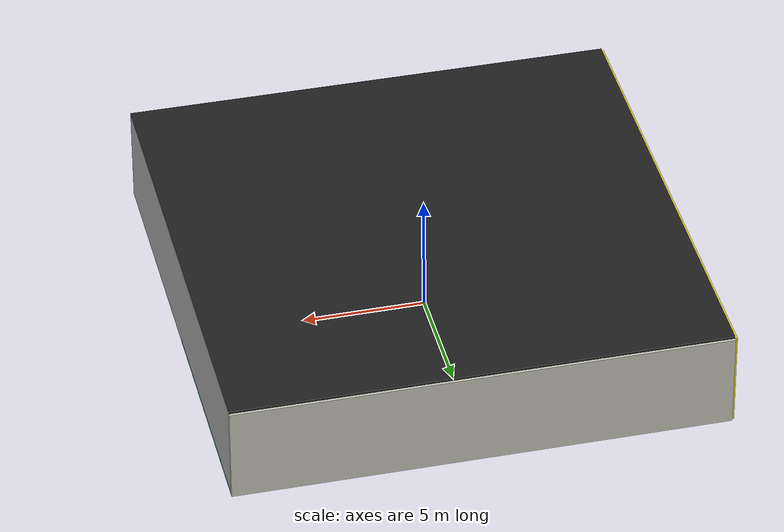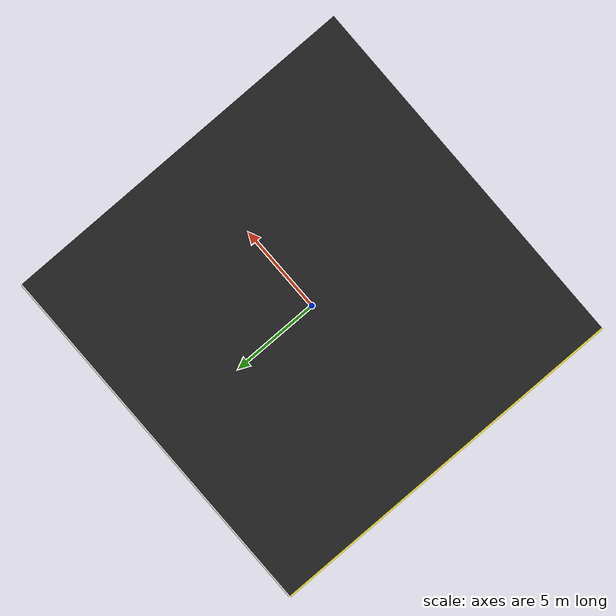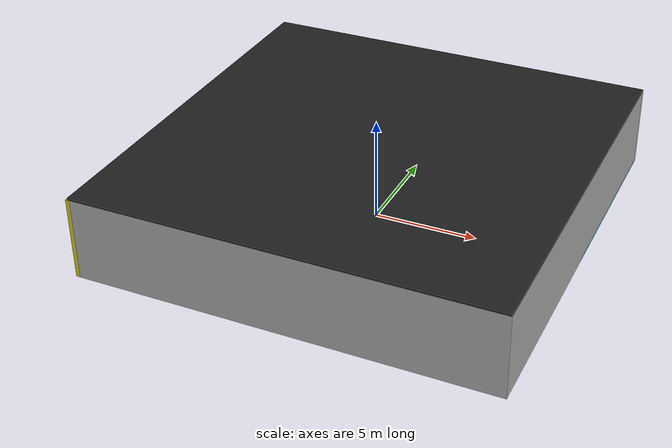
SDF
<sdf version="1.4">
 <world name="default">
  <physics type="ode">
   <max_step_size>0.001</max_step_size>
   <real_time_factor>1</real_time_factor>
   <real_time_update_rate>1000</real_time_update_rate>
   <gravity>0 0 -9.8</gravity>
  </physics>
  <scene><ambient>0.4 0.4 0.4 1</ambient><background>0.7 0.7 0.7 1</background><shadows>1</shadows></scene>
  <model name="Surrounding">
   <static>1</static>
   <link name="Ceiling">
    <collision name="Ceiling_Collision"><geometry><box><size>20 20 0.1</size></box></geometry></collision>
    <visual name="Ceiling_Visual">
     <geometry><box><size>20 20 0.1</size></box></geometry>
     <material>
      <script><uri>file://media/materials/scripts/gazebo.material</uri><name>Gazebo/FlatBlack</name></script>
     </material>
    </visual>
    <pose>0 0 4.05 0 0 0</pose>
   </link>
   <link name="Wall_South">
    <collision name="Wall_South_Collision">
     <geometry><box><size>20 0 4</size></box></geometry>
     <pose>0 0 2 0 -0 0</pose>
    </collision>
    <visual name="Wall_South_Visual">
     <pose>0 0 2 0 -0 0</pose>
     <geometry><box><size>20 0 4</size></box></geometry>
     <material>
      <script><uri>file://media/materials/scripts/gazebo.material</uri><name>Gazebo/LightOn</name></script>
     </material>
    </visual>
    <velocity_decay><linear>0</linear><angular>0</angular></velocity_decay>
    <pose>0 -10 0 0 -0 0</pose>
   </link>
   <link name="Wall_East">
    <collision name="Wall_21_Collision">
     <geometry><box><size>20 0 4</size></box></geometry>
     <pose>0 0 2 0 -0 0</pose>
    </collision>
    <visual name="Wall_21_Visual">
     <pose>0 0 2 0 -0 0</pose>
     <geometry><box><size>20 0 4</size></box></geometry>
     <material>
      <script><uri>file://media/materials/scripts/gazebo.material</uri><name>Gazebo/JointAnchor</name></script>
     </material>
    </visual>
    <velocity_decay><linear>0</linear><angular>0</angular></velocity_decay>
    <pose>10 0 0 0 -0 1.5708</pose>
   </link>
   <link name="Wall_North">
    <collision name="Wall_22_Collision">
     <geometry><box><size>20 0.2 4</size></box></geometry>
     <pose>0 0 2 0 -0 0</pose>
    </collision>
    <visual name="Wall_22_Visual">
     <pose>0 0 2 0 -0 0</pose>
     <geometry><box><size>20 0.2 4</size></box></geometry>
     <material>
      <script><uri>file://media/materials/scripts/gazebo.material</uri><name>Gazebo/PaintedWall</name></script>
     </material>
    </visual>
    <velocity_decay><linear>0</linear><angular>0</angular></velocity_decay>
    <pose>0 10 0 0 -0 0</pose>
   </link>
   <link name="Wall_West">
    <collision name="Wall_23_Collision">
     <geometry><box><size>20 0.2 4</size></box></geometry>
     <pose>0 0 2 0 -0 0</pose>
    </collision>
    <visual name="Wall_23_Visual">
     <pose>0 0 2 0 -0 0</pose>
     <geometry><box><size>20 0.2 4</size></box></geometry>
     <material>
      <script><uri>file://media/materials/scripts/gazebo.material</uri><name>Gazebo/YellowGlow</name></script>
     </material>
    </visual>
    <velocity_decay><linear>0</linear><angular>0</angular></velocity_decay>
    <pose>-10 0 0 0 0 -1.5708</pose>
   </link>
   <link name="Ground_link">
    <collision name="collision">
     <pose>0 0 .05 0 -0 0</pose>
     <geometry><box><size>20 20 0.1</size></box></geometry>
    </collision>
    <visual name="visual">
     <pose>0 0 .05 0 -0 0</pose>
     <geometry><box><size>20 20 0.1</size></box></geometry>
     <material>
      <script><uri>file://media/materials/scripts/gazebo.material</uri><name>Gazebo/Turquoise</name></script>
     </material>
    </visual>
   </link>
   <static>1</static>
  </model>
  <spherical_coordinates>
   <surface_model>EARTH_WGS84</surface_model>
   <latitude_deg>0</latitude_deg>
   <longitude_deg>0</longitude_deg>
   <elevation>0</elevation>
   <heading_deg>0</heading_deg>
  </spherical_coordinates>
  <light name="lightball_0" type="diffuse">
   <diffuse>0.8 0.8 0.8 1</diffuse>
   <specular>0.2 0.2 0.2 1</specular>
   <attenuation>
    <range>100</range>
    <constant>0.7</constant>
    <linear>0.01</linear>
    <quadratic>0.001</quadratic>
   </attenuation>
   <direction>-0.5 0.1 -0.9</direction>
   <pose>-6.4165464628 -4.34775998935 1.36892618763 0 0 0</pose>
  </light>
  <light name="lightball_1" type="diffuse">
   <diffuse>0.8 0.8 0.8 1</diffuse>
   <specular>0.2 0.2 0.2 1</specular>
   <attenuation>
    <range>100</range>
    <constant>0.7</constant>
    <linear>0.01</linear>
    <quadratic>0.001</quadratic>
   </attenuation>
   <direction>-0.5 0.1 -0.9</direction>
   <pose>0.53078749435 -1.24894467739 2.75064687748 0 0 0</pose>
  </light>
  <light name="lightball_2" type="diffuse">
   <diffuse>0.8 0.8 0.8 1</diffuse>
   <specular>0.2 0.2 0.2 1</specular>
   <attenuation>
    <range>100</range>
    <constant>0.7</constant>
    <linear>0.01</linear>
    <quadratic>0.001</quadratic>
   </attenuation>
   <direction>-0.5 0.1 -0.9</direction>
   <pose>-1.10352940046 -2.78402354625 1.55744276605 0 0 0</pose>
  </light>
  <include><uri>model://table</uri><pose>-7.30676056491 -7.63727468258 0 0 0 2.02678540961</pose></include>
  <include>
   <uri>model://robocup_3Dsim_goal</uri>
   <pose>-1.20216990768 -7.52298421633 0 0 0 1.7872441891</pose>
  </include>
  <include>
   <uri>model://construction_cone</uri>
   <pose>-2.0783278731 7.73165831457 0 0 0 1.77737757472</pose>
  </include>
  <include><uri>model://table</uri><pose>5.1457859239 -4.35275698473 0 0 0 0.774647008964</pose></include>
  <include>
   <uri>model://textured_shapes</uri>
   <pose>7.96751515119 -5.28203042274 0 0 0 0.168333240406</pose>
  </include>
 </world>
</sdf>

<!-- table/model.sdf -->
<sdf version="1.5">
  <model name="table">
    <static>true</static>
    <link name="link">
      <collision name="surface">
        <pose>0 0 1.0 0 0 0</pose>
        <geometry>
          <box>
            <size>1.5 0.8 0.03</size>
          </box>
        </geometry>
        <surface>
          <friction>
            <ode>
              <mu>0.6</mu>
              <mu2>0.6</mu2>
            </ode>
          </friction>
        </surface>
      </collision>
      <visual name="visual1">
        <pose>0 0 1.0 0 0 0</pose>
        <geometry>
          <box>
            <size>1.5 0.8 0.03</size>
          </box>
        </geometry>
        <material>
          <script>
            <uri>model://media/materials/scripts/gazebo.material</uri>
            <name>Gazebo/Wood</name>
          </script>
        </material>
      </visual>
      <collision name="front_left_leg">
        <pose>0.68 0.38 0.5 0 0 0</pose>
        <geometry>
          <cylinder>
            <radius>0.02</radius>
            <length>1.0</length>
          </cylinder>
        </geometry>
      </collision>
      <visual name="front_left_leg">
        <pose>0.68 0.38 0.5 0 0 0</pose>
        <geometry>
          <cylinder>
            <radius>0.02</radius>
            <length>1.0</length>
          </cylinder>
        </geometry>
        <material>
          <script>
            <uri>model://media/materials/scripts/gazebo.material</uri>
            <name>Gazebo/Grey</name>
          </script>
        </material>
      </visual>
      <collision name="front_right_leg">
        <pose>0.68 -0.38 0.5 0 0 0</pose>
        <geometry>
          <cylinder>
            <radius>0.02</radius>
            <length>1.0</length>
          </cylinder>
        </geometry>
      </collision>
      <visual name="front_right_leg">
        <pose>0.68 -0.38 0.5 0 0 0</pose>
        <geometry>
          <cylinder>
            <radius>0.02</radius>
            <length>1.0</length>
          </cylinder>
        </geometry>
        <material>
          <script>
            <uri>model://media/materials/scripts/gazebo.material</uri>
            <name>Gazebo/Grey</name>
          </script>
        </material>
      </visual>
      <collision name="back_right_leg">
        <pose>-0.68 -0.38 0.5 0 0 0</pose>
        <geometry>
          <cylinder>
            <radius>0.02</radius>
            <length>1.0</length>
          </cylinder>
        </geometry>
      </collision>
      <visual name="back_right_leg">
        <pose>-0.68 -0.38 0.5 0 0 0</pose>
        <geometry>
          <cylinder>
            <radius>0.02</radius>
            <length>1.0</length>
          </cylinder>
        </geometry>
        <material>
          <script>
            <uri>model://media/materials/scripts/gazebo.material</uri>
            <name>Gazebo/Grey</name>
          </script>
        </material>
      </visual>
      <collision name="back_left_leg">
        <pose>-0.68 0.38 0.5 0 0 0</pose>
        <geometry>
          <cylinder>
            <radius>0.02</radius>
            <length>1.0</length>
          </cylinder>
        </geometry>
      </collision>
      <visual name="back_left_leg">
        <pose>-0.68 0.38 0.5 0 0 0</pose>
        <geometry>
          <cylinder>
            <radius>0.02</radius>
            <length>1.0</length>
          </cylinder>
        </geometry>
        <material>
          <script>
            <uri>model://media/materials/scripts/gazebo.material</uri>
            <name>Gazebo/Grey</name>
          </script>
        </material>
      </visual>
    </link>
  </model>
</sdf>

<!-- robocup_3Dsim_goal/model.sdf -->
<sdf version="1.5">
  <model name="robocup_3d_goal">
    <static>true</static>
    <link name="left_post">
      <pose>0 1.05 0.45 0 0 0</pose>
      <collision name="collision">
        <geometry>
          <cylinder>
            <radius>0.05</radius>
            <length>0.9</length>
          </cylinder>
        </geometry>
      </collision>
      <visual name="visual">
        <geometry>
          <cylinder>
            <radius>0.05</radius>
            <length>0.9</length>
          </cylinder>
        </geometry>
        <material>
          <script>
            <uri>file://media/materials/scripts/gazebo.material</uri>
            <name>Gazebo/ZincYellow</name>
          </script>
        </material>
      </visual>
    </link>
    <link name="left_support_horiz_lower">
      <pose>0.30 1.05 0.01 0 0 0</pose>
      <collision name="collision">
        <geometry>
          <box>
            <size>0.50 0.02 0.02</size>
          </box>
        </geometry>
      </collision>
      <visual name="visual">
        <geometry>
          <box>
            <size>0.50 0.02 0.02</size>
          </box>
        </geometry>
        <material>
          <script>
            <uri>file://media/materials/scripts/gazebo.material</uri>
            <name>Gazebo/White</name>
          </script>
        </material>
      </visual>
    </link>
    <link name="left_support_horiz_upper">
      <pose>0.30 1.05 0.79 0 0 0</pose>
      <collision name="collision">
        <geometry>
          <box>
            <size>0.50 0.02 0.02</size>
          </box>
        </geometry>
      </collision>
      <visual name="visual">
        <geometry>
          <box>
            <size>0.50 0.02 0.02</size>
          </box>
        </geometry>
        <material>
          <script>
            <uri>file://media/materials/scripts/gazebo.material</uri>
            <name>Gazebo/White</name>
          </script>
        </material>
      </visual>
    </link>
    <link name="left_support_vertical">
      <pose>0.56 1.05 0.4 0 1.5708 0</pose>
      <collision name="collision">
        <geometry>
          <box>
            <size>0.80 0.02 0.02</size>
          </box>
        </geometry>
      </collision>
      <visual name="visual">
        <geometry>
          <box>
            <size>0.80 0.02 0.02</size>
          </box>
        </geometry>
        <material>
          <script>
            <uri>file://media/materials/scripts/gazebo.material</uri>
            <name>Gazebo/White</name>
          </script>
        </material>
      </visual>
    </link>
    <link name="right_support_horiz_lower">
      <pose>0.30 -1.05 0.01 0 0 0</pose>
      <collision name="collision">
        <geometry>
          <box>
            <size>0.50 0.02 0.02</size>
          </box>
        </geometry>
      </collision>
      <visual name="visual">
        <geometry>
          <box>
            <size>0.50 0.02 0.02</size>
          </box>
        </geometry>
        <material>
          <script>
            <uri>file://media/materials/scripts/gazebo.material</uri>
            <name>Gazebo/White</name>
          </script>
        </material>
      </visual>
    </link>
    <link name="right_support_horiz_upper">
      <pose>0.30 -1.05 0.79 0 0 0</pose>
      <collision name="collision">
        <geometry>
          <box>
            <size>0.50 0.02 0.02</size>
          </box>
        </geometry>
      </collision>
      <visual name="visual">
        <geometry>
          <box>
            <size>0.50 0.02 0.02</size>
          </box>
        </geometry>
        <material>
          <script>
            <uri>file://media/materials/scripts/gazebo.material</uri>
            <name>Gazebo/White</name>
          </script>
        </material>
      </visual>
    </link>
    <link name="right_support_vertical">
      <pose>0.56 -1.05 0.4 0 1.5708 0</pose>
      <collision name="collision">
        <geometry>
          <box>
            <size>0.80 0.02 0.02</size>
          </box>
        </geometry>
      </collision>
      <visual name="visual">
        <geometry>
          <box>
            <size>0.80 0.02 0.02</size>
          </box>
        </geometry>
        <material>
          <script>
            <uri>file://media/materials/scripts/gazebo.material</uri>
            <name>Gazebo/White</name>
          </script>
        </material>
      </visual>
    </link>
    <link name="center_support_horiz_lower">
      <pose>0.56 0 0.01 0 1.5708 0</pose>
      <collision name="collision">
        <geometry>
          <box>
            <size>0.02 2.08 0.02</size>
          </box>
        </geometry>
      </collision>
      <visual name="visual">
        <geometry>
          <box>
            <size>0.02 2.08 0.02</size>
          </box>
        </geometry>
        <material>
          <script>
            <uri>file://media/materials/scripts/gazebo.material</uri>
            <name>Gazebo/White</name>
          </script>
        </material>
      </visual>
    </link>
    <link name="center_support_horiz_upper">
      <pose>0.56 0 0.79 0 1.5708 0</pose>
      <collision name="collision">
        <geometry>
          <box>
            <size>0.02 2.08 0.02</size>
          </box>
        </geometry>
      </collision>
      <visual name="visual">
        <geometry>
          <box>
            <size>0.02 2.08 0.02</size>
          </box>
        </geometry>
        <material>
          <script>
            <uri>file://media/materials/scripts/gazebo.material</uri>
            <name>Gazebo/White</name>
          </script>
        </material>
      </visual>
    </link>
    <link name="right_post">
      <pose>0 -1.05 0.45 0 0 0</pose>
      <collision name="collision">
        <geometry>
          <cylinder>
            <radius>0.05</radius>
            <length>0.9</length>
          </cylinder>
        </geometry>
      </collision>
      <visual name="visual">
        <geometry>
          <cylinder>
            <radius>0.05</radius>
            <length>0.9</length>
          </cylinder>
        </geometry>
        <material>
          <script>
            <uri>file://media/materials/scripts/gazebo.material</uri>
            <name>Gazebo/ZincYellow</name>
          </script>
        </material>
      </visual>
    </link>
    <link name="crossbar">
      <pose>0 0 0.85 1.57 1.57 0</pose>
      <collision name="collision">
        <geometry>
          <cylinder>
            <radius>0.05</radius>
            <length>2.0</length>
          </cylinder>
        </geometry>
      </collision>
      <visual name="visual">
        <geometry>
          <cylinder>
            <radius>0.05</radius>
            <length>2.0</length>
          </cylinder>
        </geometry>
        <material>
          <script>
            <uri>file://media/materials/scripts/gazebo.material</uri>
            <name>Gazebo/ZincYellow</name>
          </script>
        </material>
      </visual>
    </link>
    <link name="center_net">
      <pose>0.56 0 0.40 0 0 0</pose>
      <collision name="collision">
        <geometry>
          <box>
            <size>0.01 2.1 0.80</size>
          </box>
        </geometry>
      </collision>
      <visual name="visual">
        <geometry>
          <box>
            <size>0.01 2.1 0.80</size>
          </box>
        </geometry>
        <material>
          <script>
            <uri>model://../model_source/models/robocup09_spl_field/materials/scripts/</uri>
            <uri>model://../model_source/models/robocup09_spl_field/materials/textures/</uri>
            <name>RoboCup/Net</name>
          </script>
        </material>
      </visual>
    </link>
    <link name="left_net">
      <pose>0.30 1.05 0.40 0 0 0</pose>
      <collision name="collision">
        <geometry>
          <box>
            <size>0.50 0.01 0.76</size>
          </box>
        </geometry>
      </collision>
      <visual name="visual">
        <geometry>
          <box>
            <size>0.50 0.01 0.76</size>
          </box>
        </geometry>
        <material>
          <script>
            <uri>model://../model_source/models/robocup09_spl_field/materials/scripts/</uri>
            <uri>model://../model_source/models/robocup09_spl_field/materials/textures/</uri>
            <name>RoboCup/Net</name>
          </script>
        </material>
      </visual>
    </link>
    <link name="right_net">
      <pose>0.30 -1.05 0.40 0 0 0</pose>
      <collision name="collision">
        <geometry>
          <box>
            <size>0.50 0.01 0.76</size>
          </box>
        </geometry>
      </collision>
      <visual name="visual">
        <geometry>
          <box>
            <size>0.50 0.01 0.76</size>
          </box>
        </geometry>
        <material>
          <script>
            <uri>model://../model_source/models/robocup09_spl_field/materials/scripts/</uri>
            <uri>model://../model_source/models/robocup09_spl_field/materials/textures/</uri>
            <name>RoboCup/Net</name>
          </script>
        </material>
      </visual>
    </link>
  </model>
</sdf>

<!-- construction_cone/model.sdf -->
<sdf version="1.5">
  <model name="Construction Cone">
    <link name="link">
      <collision name="collision">
        <geometry>
          <mesh>
            <scale>10 10 10</scale>
            <uri>file://isr-testbed/construction_cone/meshes/construction_cone.dae</uri>
          </mesh>
        </geometry>
      </collision>
      <visual name="visual">
        <geometry>
          <mesh>
            <scale>10 10 10</scale>
            <uri>file://isr-testbed/construction_cone/meshes/construction_cone.dae</uri>
          </mesh>
        </geometry>
      </visual>
    </link>
  </model>
</sdf>

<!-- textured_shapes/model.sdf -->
<sdf version="1.6">
  <model name="textured_shapes">
    <pose>0 0 0.5 0 0 0</pose>
    <link name="box">
      <pose>0 -1.5 0 0 0 0</pose>
      <collision name="collision">
        <geometry>
          <box>
            <size>1 1 1</size>
          </box>
        </geometry>
      </collision>
      <visual name="visual">
        <geometry>
          <box>
            <size>1 1 1</size>
          </box>
        </geometry>
        <material>
          <script>
            <uri>model://../model_source/models/textured_shapes/materials/scripts</uri>
            <uri>model://../model_source/models/textured_shapes/materials/textures</uri>
            <name>TexturedShape/Squares</name>
          </script>
        </material>
      </visual>
    </link>
    <link name="sphere">
      <collision name="collision">
        <geometry>
          <sphere>
            <radius>0.5</radius>
          </sphere>
        </geometry>
      </collision>
      <visual name="visual">
        <geometry>
          <sphere>
            <radius>0.5</radius>
          </sphere>
        </geometry>
        <material>
          <script>
            <uri>model://../model_source/models/textured_shapes/materials/scripts</uri>
            <uri>model://../model_source/models/textured_shapes/materials/textures</uri>
            <name>TexturedShape/Squares</name>
          </script>
        </material>
      </visual>
    </link>
    <link name="cylinder">
      <pose>0 1.5 0 0 0 0</pose>
      <collision name="collision">
        <geometry>
          <cylinder>
            <radius>0.5</radius>
            <length>1</length>
          </cylinder>
        </geometry>
      </collision>
      <visual name="visual">
        <geometry>
          <cylinder>
            <radius>0.5</radius>
            <length>1</length>
          </cylinder>
        </geometry>
        <material>
          <script>
            <uri>model://../model_source/models/textured_shapes/materials/scripts</uri>
            <uri>model://../model_source/models/textured_shapes/materials/textures</uri>
            <name>TexturedShape/Squares</name>
          </script>
        </material>
      </visual>
    </link>
  </model>
</sdf>
